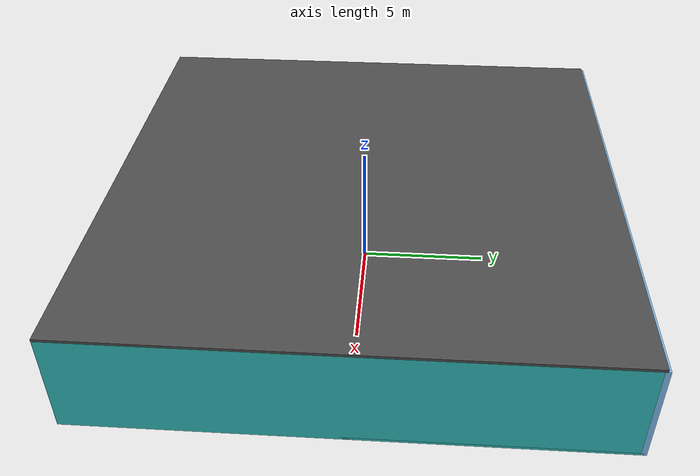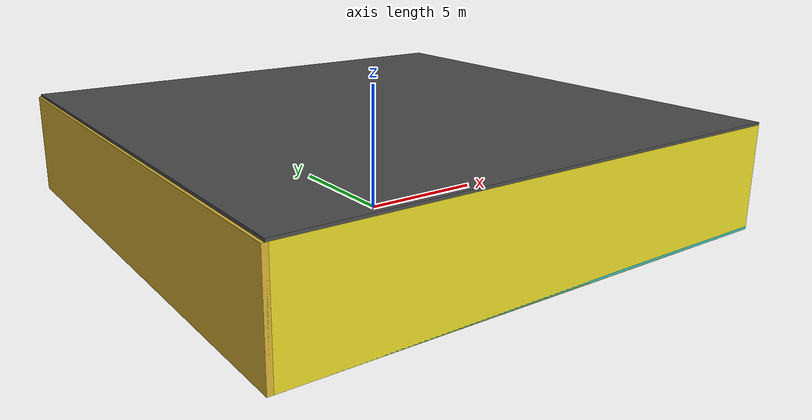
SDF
<sdf version="1.4">
 <world name="default">
  <physics type="ode">
   <max_step_size>0.001</max_step_size>
   <real_time_factor>1</real_time_factor>
   <real_time_update_rate>1000</real_time_update_rate>
   <gravity>0 0 -9.8</gravity>
  </physics>
  <scene><ambient>0.4 0.4 0.4 1</ambient><background>0.7 0.7 0.7 1</background><shadows>1</shadows></scene>
  <model name="Surrounding">
   <static>1</static>
   <link name="Ceiling">
    <collision name="Ceiling_Collision"><geometry><box><size>20 20 0.1</size></box></geometry></collision>
    <visual name="Ceiling_Visual">
     <geometry><box><size>20 20 0.1</size></box></geometry>
     <material>
      <script><uri>file://media/materials/scripts/gazebo.material</uri><name>Gazebo/DarkGrey</name></script>
     </material>
    </visual>
    <pose>0 0 4.05 0 0 0</pose>
   </link>
   <link name="Wall_South">
    <collision name="Wall_South_Collision">
     <geometry><box><size>20 0 4</size></box></geometry>
     <pose>0 0 2 0 -0 0</pose>
    </collision>
    <visual name="Wall_South_Visual">
     <pose>0 0 2 0 -0 0</pose>
     <geometry><box><size>20 0 4</size></box></geometry>
     <material>
      <script><uri>file://media/materials/scripts/gazebo.material</uri><name>Gazebo/YellowGlow</name></script>
     </material>
    </visual>
    <velocity_decay><linear>0</linear><angular>0</angular></velocity_decay>
    <pose>0 -10 0 0 -0 0</pose>
   </link>
   <link name="Wall_East">
    <collision name="Wall_21_Collision">
     <geometry><box><size>20 0 4</size></box></geometry>
     <pose>0 0 2 0 -0 0</pose>
    </collision>
    <visual name="Wall_21_Visual">
     <pose>0 0 2 0 -0 0</pose>
     <geometry><box><size>20 0 4</size></box></geometry>
     <material>
      <script>
       <uri>file://media/materials/scripts/gazebo.material</uri>
       <name>Gazebo/TurquoiseGlowOutline</name>
      </script>
     </material>
    </visual>
    <velocity_decay><linear>0</linear><angular>0</angular></velocity_decay>
    <pose>10 0 0 0 -0 1.5708</pose>
   </link>
   <link name="Wall_North">
    <collision name="Wall_22_Collision">
     <geometry><box><size>20 0.2 4</size></box></geometry>
     <pose>0 0 2 0 -0 0</pose>
    </collision>
    <visual name="Wall_22_Visual">
     <pose>0 0 2 0 -0 0</pose>
     <geometry><box><size>20 0.2 4</size></box></geometry>
     <material>
      <script><uri>file://media/materials/scripts/gazebo.material</uri><name>Gazebo/SkyBlue</name></script>
     </material>
    </visual>
    <velocity_decay><linear>0</linear><angular>0</angular></velocity_decay>
    <pose>0 10 0 0 -0 0</pose>
   </link>
   <link name="Wall_West">
    <collision name="Wall_23_Collision">
     <geometry><box><size>20 0.2 4</size></box></geometry>
     <pose>0 0 2 0 -0 0</pose>
    </collision>
    <visual name="Wall_23_Visual">
     <pose>0 0 2 0 -0 0</pose>
     <geometry><box><size>20 0.2 4</size></box></geometry>
     <material>
      <script><uri>file://media/materials/scripts/gazebo.material</uri><name>Gazebo/Gold</name></script>
     </material>
    </visual>
    <velocity_decay><linear>0</linear><angular>0</angular></velocity_decay>
    <pose>-10 0 0 0 0 -1.5708</pose>
   </link>
   <link name="Ground_link">
    <collision name="collision">
     <pose>0 0 .05 0 -0 0</pose>
     <geometry><box><size>20 20 0.1</size></box></geometry>
    </collision>
    <visual name="visual">
     <pose>0 0 .05 0 -0 0</pose>
     <geometry><box><size>20 20 0.1</size></box></geometry>
     <material>
      <script><uri>file://media/materials/scripts/gazebo.material</uri><name>Gazebo/Turquoise</name></script>
     </material>
    </visual>
   </link>
   <static>1</static>
  </model>
  <spherical_coordinates>
   <surface_model>EARTH_WGS84</surface_model>
   <latitude_deg>0</latitude_deg>
   <longitude_deg>0</longitude_deg>
   <elevation>0</elevation>
   <heading_deg>0</heading_deg>
  </spherical_coordinates>
  <light name="lightball_0" type="diffuse">
   <diffuse>0.8 0.8 0.8 1</diffuse>
   <specular>0.2 0.2 0.2 1</specular>
   <attenuation>
    <range>100</range>
    <constant>0.7</constant>
    <linear>0.01</linear>
    <quadratic>0.001</quadratic>
   </attenuation>
   <direction>-0.5 0.1 -0.9</direction>
   <pose>2.58203543239 6.2672854735 2.29618017188 0 0 0</pose>
  </light>
  <light name="lightball_1" type="diffuse">
   <diffuse>0.8 0.8 0.8 1</diffuse>
   <specular>0.2 0.2 0.2 1</specular>
   <attenuation>
    <range>100</range>
    <constant>0.7</constant>
    <linear>0.01</linear>
    <quadratic>0.001</quadratic>
   </attenuation>
   <direction>-0.5 0.1 -0.9</direction>
   <pose>4.60965070997 9.54432188269 0.708008314378 0 0 0</pose>
  </light>
  <include><uri>model://table</uri><pose>-4.57845541953 -1.45511658077 0 0 0 1.03729421192</pose></include>
  <include><uri>model://cabinet</uri><pose>-2.00612402055 4.0955544817 0 0 0 1.6185671732</pose></include>
  <include>
   <uri>model://textured_shapes</uri>
   <pose>-1.5135070484 7.02342971236 0 0 0 0.149447015881</pose>
  </include>
  <include><uri>model://cabinet</uri><pose>0.708091646626 1.31713545545 0 0 0 2.9982562322</pose></include>
  <include><uri>model://cabinet</uri><pose>0.738060907761 3.73866886806 0 0 0 2.91378669416</pose></include>
  <include>
   <uri>model://construction_cone</uri>
   <pose>4.7777464561 1.15677057221 0 0 0 0.741701098033</pose>
  </include>
  <include><uri>model://cabinet</uri><pose>8.26532585312 -7.98854374995 0 0 0 1.07503406946</pose></include>
  <include>
   <uri>model://textured_shapes</uri>
   <pose>8.24791705679 2.13772281134 0 0 0 0.0291240406135</pose>
  </include>
 </world>
</sdf>

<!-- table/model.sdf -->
<sdf version="1.5">
  <model name="table">
    <static>true</static>
    <link name="link">
      <collision name="surface">
        <pose>0 0 1.0 0 0 0</pose>
        <geometry>
          <box>
            <size>1.5 0.8 0.03</size>
          </box>
        </geometry>
        <surface>
          <friction>
            <ode>
              <mu>0.6</mu>
              <mu2>0.6</mu2>
            </ode>
          </friction>
        </surface>
      </collision>
      <visual name="visual1">
        <pose>0 0 1.0 0 0 0</pose>
        <geometry>
          <box>
            <size>1.5 0.8 0.03</size>
          </box>
        </geometry>
        <material>
          <script>
            <uri>model://media/materials/scripts/gazebo.material</uri>
            <name>Gazebo/Wood</name>
          </script>
        </material>
      </visual>
      <collision name="front_left_leg">
        <pose>0.68 0.38 0.5 0 0 0</pose>
        <geometry>
          <cylinder>
            <radius>0.02</radius>
            <length>1.0</length>
          </cylinder>
        </geometry>
      </collision>
      <visual name="front_left_leg">
        <pose>0.68 0.38 0.5 0 0 0</pose>
        <geometry>
          <cylinder>
            <radius>0.02</radius>
            <length>1.0</length>
          </cylinder>
        </geometry>
        <material>
          <script>
            <uri>model://media/materials/scripts/gazebo.material</uri>
            <name>Gazebo/Grey</name>
          </script>
        </material>
      </visual>
      <collision name="front_right_leg">
        <pose>0.68 -0.38 0.5 0 0 0</pose>
        <geometry>
          <cylinder>
            <radius>0.02</radius>
            <length>1.0</length>
          </cylinder>
        </geometry>
      </collision>
      <visual name="front_right_leg">
        <pose>0.68 -0.38 0.5 0 0 0</pose>
        <geometry>
          <cylinder>
            <radius>0.02</radius>
            <length>1.0</length>
          </cylinder>
        </geometry>
        <material>
          <script>
            <uri>model://media/materials/scripts/gazebo.material</uri>
            <name>Gazebo/Grey</name>
          </script>
        </material>
      </visual>
      <collision name="back_right_leg">
        <pose>-0.68 -0.38 0.5 0 0 0</pose>
        <geometry>
          <cylinder>
            <radius>0.02</radius>
            <length>1.0</length>
          </cylinder>
        </geometry>
      </collision>
      <visual name="back_right_leg">
        <pose>-0.68 -0.38 0.5 0 0 0</pose>
        <geometry>
          <cylinder>
            <radius>0.02</radius>
            <length>1.0</length>
          </cylinder>
        </geometry>
        <material>
          <script>
            <uri>model://media/materials/scripts/gazebo.material</uri>
            <name>Gazebo/Grey</name>
          </script>
        </material>
      </visual>
      <collision name="back_left_leg">
        <pose>-0.68 0.38 0.5 0 0 0</pose>
        <geometry>
          <cylinder>
            <radius>0.02</radius>
            <length>1.0</length>
          </cylinder>
        </geometry>
      </collision>
      <visual name="back_left_leg">
        <pose>-0.68 0.38 0.5 0 0 0</pose>
        <geometry>
          <cylinder>
            <radius>0.02</radius>
            <length>1.0</length>
          </cylinder>
        </geometry>
        <material>
          <script>
            <uri>model://media/materials/scripts/gazebo.material</uri>
            <name>Gazebo/Grey</name>
          </script>
        </material>
      </visual>
    </link>
  </model>
</sdf>

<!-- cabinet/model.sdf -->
<sdf version="1.5">
  <model name="cabinet">
    <static>true</static>
    <link name="cabinet_bottom_plate">
      <inertial>
        <pose>0 0 -1 0 0 0</pose>
        <inertia>
          <ixx>2.050000</ixx>
          <ixy>0</ixy>
          <ixz>0</ixz>
          <iyy>2.050000</iyy>
          <iyz>0</iyz>
          <izz>2.050000</izz>
        </inertia>
        <mass>25.000000</mass>
      </inertial>
      <collision name="cabinet_bottom_plate_geom">
        <pose>0 0 0.010000 0 0 0</pose>
        <geometry>
          <box>
            <size>0.450000 0.450000 0.020000</size>
          </box>
        </geometry>
      </collision>
      <visual name="cabinet_bottom_plate_geom_visual">
        <pose>0 0 0.010000 0 0 0</pose>
        <geometry>
          <box>
            <size>0.450000 0.450000 0.020000</size>
          </box>
        </geometry>
        <material>
          <script>
            <uri>model://media/materials/scripts/gazebo.material</uri>
            <name>Gazebo/Wood</name>
          </script>
        </material>
      </visual>
      <collision name="cabinet_bottom_plate_geom_cabinet_back_plate">
        <pose>0.235000 0 0.510000 0 0 0</pose>
        <geometry>
          <box>
            <size>0.020000 0.450000 1.020000</size>
          </box>
        </geometry>
      </collision>
      <visual name="cabinet_bottom_plate_geom_cabinet_back_plate_visual">
        <pose>0.235000 0 0.510000 0 0 0</pose>
        <geometry>
          <box>
            <size>0.020000 0.450000 1.020000</size>
          </box>
        </geometry>
        <material>
          <script>
            <uri>model://media/materials/scripts/gazebo.material</uri>
            <name>Gazebo/Wood</name>
          </script>
        </material>
      </visual>
      <collision name="cabinet_bottom_plate_geom_cabinet_left_plate">
        <pose>0 0.235000 0.510000 0 0 0</pose>
        <geometry>
          <box>
            <size>0.450000 0.020000 1.020000</size>
          </box>
        </geometry>
      </collision>
      <visual name="cabinet_bottom_plate_geom_cabinet_left_plate_visual">
        <pose>0 0.235000 0.510000 0 0 0</pose>
        <geometry>
          <box>
            <size>0.450000 0.020000 1.020000</size>
          </box>
        </geometry>
        <material>
          <script>
            <uri>model://media/materials/scripts/gazebo.material</uri>
            <name>Gazebo/Wood</name>
          </script>
        </material>
      </visual>
      <collision name="cabinet_bottom_plate_geom_cabinet_middle_plate">
        <pose>0 0 0.510000 0 0 0</pose>
        <geometry>
          <box>
            <size>0.450000 0.450000 0.020000</size>
          </box>
        </geometry>
      </collision>
      <visual name="cabinet_bottom_plate_geom_cabinet_middle_plate_visual">
        <pose>0 0 0.510000 0 0 0</pose>
        <geometry>
          <box>
            <size>0.450000 0.450000 0.020000</size>
          </box>
        </geometry>
        <material>
          <script>
            <uri>model://media/materials/scripts/gazebo.material</uri>
            <name>Gazebo/Wood</name>
          </script>
        </material>
      </visual>
      <collision name="cabinet_bottom_plate_geom_cabinet_right_plate">
        <pose>0 -0.235000 0.510000 0 0 0</pose>
        <geometry>
          <box>
            <size>0.450000 0.020000 1.020000</size>
          </box>
        </geometry>
      </collision>
      <visual name="cabinet_bottom_plate_geom_cabinet_right_plate_visual">
        <pose>0 -0.235000 0.510000 0 0 0</pose>
        <geometry>
          <box>
            <size>0.450000 0.020000 1.020000</size>
          </box>
        </geometry>
        <material>
          <script>
            <uri>model://media/materials/scripts/gazebo.material</uri>
            <name>Gazebo/Wood</name>
          </script>
        </material>
      </visual>
      <collision name="cabinet_bottom_plate_geom_cabinet_top_plate">
        <pose>0 0 1.010000 0 0 0</pose>
        <geometry>
          <box>
            <size>0.450000 0.450000 0.020000</size>
          </box>
        </geometry>
      </collision>
      <visual name="cabinet_bottom_plate_geom_cabinet_top_plate_visual">
        <pose>0 0 1.010000 0 0 0</pose>
        <geometry>
          <box>
            <size>0.450000 0.450000 0.020000</size>
          </box>
        </geometry>
        <material>
          <script>
            <uri>model://media/materials/scripts/gazebo.material</uri>
            <name>Gazebo/Wood</name>
          </script>
        </material>
      </visual>
    </link>
  </model>
</sdf>

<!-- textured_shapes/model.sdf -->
<sdf version="1.6">
  <model name="textured_shapes">
    <pose>0 0 0.5 0 0 0</pose>
    <link name="box">
      <pose>0 -1.5 0 0 0 0</pose>
      <collision name="collision">
        <geometry>
          <box>
            <size>1 1 1</size>
          </box>
        </geometry>
      </collision>
      <visual name="visual">
        <geometry>
          <box>
            <size>1 1 1</size>
          </box>
        </geometry>
        <material>
          <script>
            <uri>model://../model_source/models/textured_shapes/materials/scripts</uri>
            <uri>model://../model_source/models/textured_shapes/materials/textures</uri>
            <name>TexturedShape/Squares</name>
          </script>
        </material>
      </visual>
    </link>
    <link name="sphere">
      <collision name="collision">
        <geometry>
          <sphere>
            <radius>0.5</radius>
          </sphere>
        </geometry>
      </collision>
      <visual name="visual">
        <geometry>
          <sphere>
            <radius>0.5</radius>
          </sphere>
        </geometry>
        <material>
          <script>
            <uri>model://../model_source/models/textured_shapes/materials/scripts</uri>
            <uri>model://../model_source/models/textured_shapes/materials/textures</uri>
            <name>TexturedShape/Squares</name>
          </script>
        </material>
      </visual>
    </link>
    <link name="cylinder">
      <pose>0 1.5 0 0 0 0</pose>
      <collision name="collision">
        <geometry>
          <cylinder>
            <radius>0.5</radius>
            <length>1</length>
          </cylinder>
        </geometry>
      </collision>
      <visual name="visual">
        <geometry>
          <cylinder>
            <radius>0.5</radius>
            <length>1</length>
          </cylinder>
        </geometry>
        <material>
          <script>
            <uri>model://../model_source/models/textured_shapes/materials/scripts</uri>
            <uri>model://../model_source/models/textured_shapes/materials/textures</uri>
            <name>TexturedShape/Squares</name>
          </script>
        </material>
      </visual>
    </link>
  </model>
</sdf>

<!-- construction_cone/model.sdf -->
<sdf version="1.5">
  <model name="Construction Cone">
    <link name="link">
      <collision name="collision">
        <geometry>
          <mesh>
            <scale>10 10 10</scale>
            <uri>file://isr-testbed/construction_cone/meshes/construction_cone.dae</uri>
          </mesh>
        </geometry>
      </collision>
      <visual name="visual">
        <geometry>
          <mesh>
            <scale>10 10 10</scale>
            <uri>file://isr-testbed/construction_cone/meshes/construction_cone.dae</uri>
          </mesh>
        </geometry>
      </visual>
    </link>
  </model>
</sdf>
